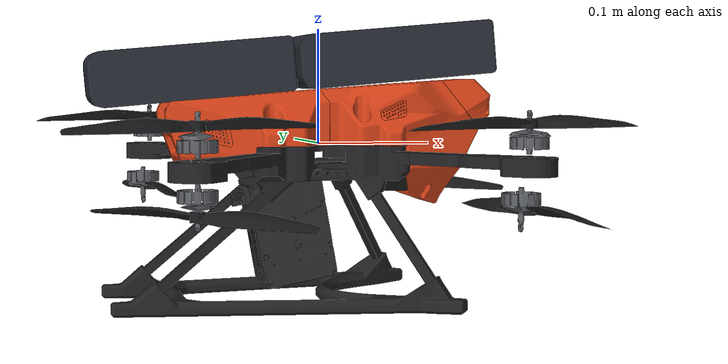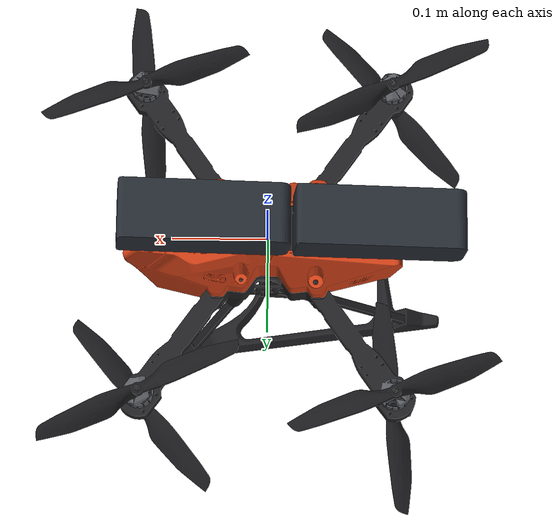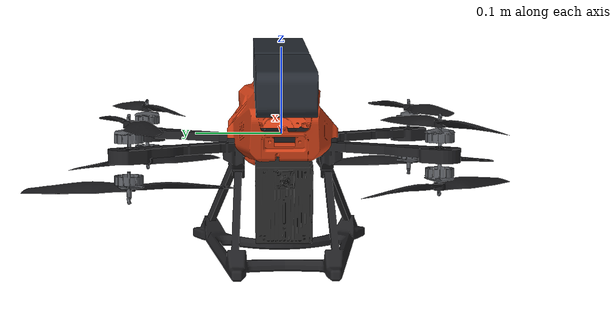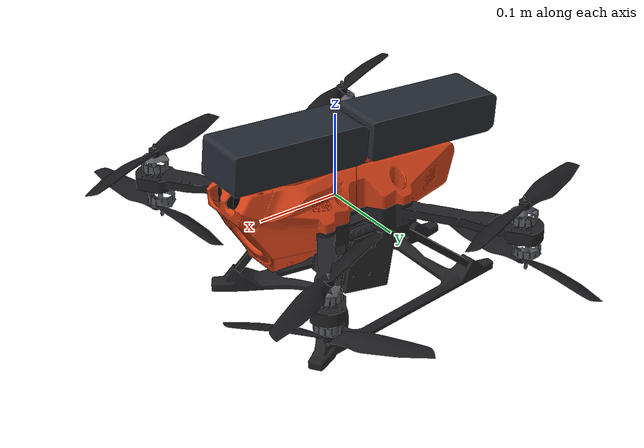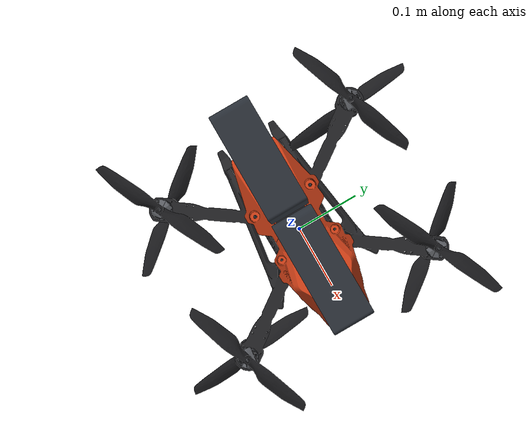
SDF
<?xml version='1.0' encoding='utf-8'?>
<sdf version="1.9">
  <model name="porter">
    <pose>0 0 0 0 0 0</pose>
    <self_collide>false</self_collide>
    <static>false</static>
    <link name="base_link">
      <inertial>
        <pose>-0.0099647757784098907 -0.0002373481406530975 0.023935333252792141 0 0 0</pose>
        <mass>4.6550000000000011</mass>
        <inertia>
          <ixx>0.038163400752508569</ixx>
          <ixy>2.6045715026987511e-05</ixy>
          <ixz>-0.00060536731462408947</ixz>
          <iyy>0.061897142095364233</iyy>
          <iyz>8.8887066983618513e-06</iyz>
          <izz>0.070339338178846522</izz>
        </inertia>
      </inertial>
      <collision name="base_link_collision">
        <pose>0.0046259999999999999 0 0.001748 0 0 0</pose>
        <geometry>
          <box>
            <size>0.28677200000000003 0.125251 0.109526</size>
          </box>
        </geometry>
      </collision>
      <collision name="base_link_collision_1">
        <pose>0.065313999999999997 -0.083019999999999997 -0.01 0 0 -0.90420599999999995</pose>
        <geometry>
          <box>
            <size>0.21126600000000001 0.029999999999999999 0.012</size>
          </box>
        </geometry>
      </collision>
      <collision name="base_link_collision_2">
        <pose>-0.065313999999999997 0.083019999999999997 -0.01 0 0 2.237387</pose>
        <geometry>
          <box>
            <size>0.21126600000000001 0.029999999999999999 0.012</size>
          </box>
        </geometry>
      </collision>
      <collision name="base_link_collision_3">
        <pose>0.065312999999999996 0.083020999999999998 -0.01 0 0 0.90421200000000013</pose>
        <geometry>
          <box>
            <size>0.21126500000000001 0.029999999999999999 0.012</size>
          </box>
        </geometry>
      </collision>
      <collision name="base_link_collision_4">
        <pose>-0.065312999999999996 -0.083020999999999998 -0.01 0 0 -2.2373810000000001</pose>
        <geometry>
          <box>
            <size>0.21126500000000001 0.029999999999999999 0.012</size>
          </box>
        </geometry>
      </collision>
      <collision name="base_link_collision_5">
        <pose>0.13062799999999999 -0.16604099999999999 0.0079190000000000007 0 0 0</pose>
        <geometry>
          <cylinder>
            <length>0.034000000000000002</length>
            <radius>0.017500000000000002</radius>
          </cylinder>
        </geometry>
      </collision>
      <collision name="base_link_collision_6">
        <pose>0.13076199999999999 -0.16598099999999999 -0.032918999999999997 0 0 0</pose>
        <geometry>
          <cylinder>
            <length>0.034000000000000002</length>
            <radius>0.017500000000000002</radius>
          </cylinder>
        </geometry>
      </collision>
      <collision name="base_link_collision_7">
        <pose>-0.13062599999999999 -0.166042 0.0079190000000000007 0 0 0</pose>
        <geometry>
          <cylinder>
            <length>0.034000000000000002</length>
            <radius>0.017500000000000002</radius>
          </cylinder>
        </geometry>
      </collision>
      <collision name="base_link_collision_8">
        <pose>-0.13076199999999999 -0.16598099999999999 -0.032918999999999997 0 0 0</pose>
        <geometry>
          <cylinder>
            <length>0.034000000000000002</length>
            <radius>0.017500000000000002</radius>
          </cylinder>
        </geometry>
      </collision>
      <collision name="base_link_collision_9">
        <pose>-0.13076199999999999 0.16598099999999999 -0.032918999999999997 0 0 0</pose>
        <geometry>
          <cylinder>
            <length>0.034000000000000002</length>
            <radius>0.017500000000000002</radius>
          </cylinder>
        </geometry>
      </collision>
      <collision name="base_link_collision_10">
        <pose>-0.13062799999999999 0.16604099999999999 0.0079190000000000007 0 0 0</pose>
        <geometry>
          <cylinder>
            <length>0.034000000000000002</length>
            <radius>0.017500000000000002</radius>
          </cylinder>
        </geometry>
      </collision>
      <collision name="base_link_collision_11">
        <pose>0.13062599999999999 0.166042 0.0079190000000000007 0 0 0</pose>
        <geometry>
          <cylinder>
            <length>0.034000000000000002</length>
            <radius>0.017500000000000002</radius>
          </cylinder>
        </geometry>
      </collision>
      <collision name="base_link_collision_12">
        <pose>0.13076199999999999 0.16598099999999999 -0.032918999999999997 0 0 0</pose>
        <geometry>
          <cylinder>
            <length>0.034000000000000002</length>
            <radius>0.017500000000000002</radius>
          </cylinder>
        </geometry>
      </collision>
      <collision name="base_link_collision_13">
        <pose>-0.040476999999999999 0.057381000000000001 -0.123428 0 0 0</pose>
        <geometry>
          <box>
            <size>0.29189500000000002 0.100948 0.029144</size>
          </box>
        </geometry>
      </collision>
      <collision name="base_link_collision_14">
        <pose>-0.040476999999999999 -0.057381000000000001 -0.123428 0 0 0</pose>
        <geometry>
          <box>
            <size>0.29189500000000002 0.100948 0.029144</size>
          </box>
        </geometry>
      </collision>
      <collision name="base_link_fixed_joint_lump__battery_front_collision_15">
        <pose>0.06522303670522818 -1.633972797343564e-09 0.078174222859885192 1.5707959999999987 1.4835299999999998 -1.9107600594825517e-15</pose>
        <geometry>
          <box>
            <size>0.047 0.17499999999999999 0.063</size>
          </box>
        </geometry>
      </collision>
      <collision name="base_link_fixed_joint_lump__battery_rear_collision_16">
        <pose>-0.11409196329477179 -1.633972797343564e-09 0.062486222859885199 1.5707959999999987 1.4835299999999998 -1.9107600594825517e-15</pose>
        <geometry>
          <box>
            <size>0.047 0.17499999999999999 0.063</size>
          </box>
        </geometry>
      </collision>
      <visual name="base_link_visual">
        <pose>0 0 0 0 0 0</pose>
        <geometry>
          <mesh>
            <scale>1 1 1</scale>
            <uri>model://porter/meshes/base_frame.stl</uri>
          </mesh>
        </geometry>
        <material>
          <diffuse>0.13 0.13 0.14 1</diffuse>
          <ambient>0.13 0.13 0.14 1</ambient>
        </material>
      </visual>
      <visual name="base_link_visual_1">
        <pose>0 0 0 0 0 0</pose>
        <geometry>
          <mesh>
            <scale>1 1 1</scale>
            <uri>model://porter/meshes/base_shell.stl</uri>
          </mesh>
        </geometry>
        <material>
          <diffuse>0.82 0.25 0.09 1</diffuse>
          <ambient>0.82 0.25 0.09 1</ambient>
        </material>
      </visual>
      <visual name="base_link_visual_2">
        <pose>0.13062699999999999 -0.16604099999999999 0.0014 0 0 1.396263</pose>
        <geometry>
          <mesh>
            <scale>1 1 1</scale>
            <uri>model://porter/meshes/velox2808.stl</uri>
          </mesh>
        </geometry>
        <material>
          <diffuse>0.35 0.36 0.38 1</diffuse>
          <ambient>0.35 0.36 0.38 1</ambient>
        </material>
      </visual>
      <visual name="base_link_visual_3">
        <pose>0.124242 -0.165981 -0.032919 3.14159265359 0 -2.530727</pose>
        <geometry>
          <mesh>
            <scale>1 1 1</scale>
            <uri>model://porter/meshes/velox2808.stl</uri>
          </mesh>
        </geometry>
        <material>
          <diffuse>0.35 0.36 0.38 1</diffuse>
          <ambient>0.35 0.36 0.38 1</ambient>
        </material>
      </visual>
      <visual name="base_link_visual_4">
        <pose>-0.13062599999999999 -0.166042 0.0014 0 0 0.17453299999999999</pose>
        <geometry>
          <mesh>
            <scale>1 1 1</scale>
            <uri>model://porter/meshes/velox2808.stl</uri>
          </mesh>
        </geometry>
        <material>
          <diffuse>0.35 0.36 0.38 1</diffuse>
          <ambient>0.35 0.36 0.38 1</ambient>
        </material>
      </visual>
      <visual name="base_link_visual_5">
        <pose>-0.13076199999999999 -0.16598099999999999 -0.0264 3.1415923071795868 -1.3234889800848443e-23 2.5307270000000002</pose>
        <geometry>
          <mesh>
            <scale>1 1 1</scale>
            <uri>model://porter/meshes/velox2808.stl</uri>
          </mesh>
        </geometry>
        <material>
          <diffuse>0.35 0.36 0.38 1</diffuse>
          <ambient>0.35 0.36 0.38 1</ambient>
        </material>
      </visual>
      <visual name="base_link_visual_6">
        <pose>-0.137281 0.165981 -0.032919 3.14159265359 0 0.610865</pose>
        <geometry>
          <mesh>
            <scale>1 1 1</scale>
            <uri>model://porter/meshes/velox2808.stl</uri>
          </mesh>
        </geometry>
        <material>
          <diffuse>0.35 0.36 0.38 1</diffuse>
          <ambient>0.35 0.36 0.38 1</ambient>
        </material>
      </visual>
      <visual name="base_link_visual_7">
        <pose>-0.13062799999999999 0.16604099999999999 0.0014 0 0 -1.7453289999999999</pose>
        <geometry>
          <mesh>
            <scale>1 1 1</scale>
            <uri>model://porter/meshes/velox2808.stl</uri>
          </mesh>
        </geometry>
        <material>
          <diffuse>0.35 0.36 0.38 1</diffuse>
          <ambient>0.35 0.36 0.38 1</ambient>
        </material>
      </visual>
      <visual name="base_link_visual_8">
        <pose>0.13062599999999999 0.166042 0.0014 0 0 -2.96706</pose>
        <geometry>
          <mesh>
            <scale>1 1 1</scale>
            <uri>model://porter/meshes/velox2808.stl</uri>
          </mesh>
        </geometry>
        <material>
          <diffuse>0.35 0.36 0.38 1</diffuse>
          <ambient>0.35 0.36 0.38 1</ambient>
        </material>
      </visual>
      <visual name="base_link_visual_9">
        <pose>0.13076199999999999 0.16598099999999999 -0.0264 3.1415923071795868 -1.3234889800848443e-23 -0.61086499999999999</pose>
        <geometry>
          <mesh>
            <scale>1 1 1</scale>
            <uri>model://porter/meshes/velox2808.stl</uri>
          </mesh>
        </geometry>
        <material>
          <diffuse>0.35 0.36 0.38 1</diffuse>
          <ambient>0.35 0.36 0.38 1</ambient>
        </material>
      </visual>
      <visual name="base_link_fixed_joint_lump__battery_front_visual_10">
        <pose>0.070204000000000003 0.0315 0.078609999999999999 1.5707959999999987 1.4835299999999998 -1.9107600594825517e-15</pose>
        <geometry>
          <mesh>
            <scale>1 1 1</scale>
            <uri>model://porter/meshes/tattu_6s_8000.stl</uri>
          </mesh>
        </geometry>
        <material>
          <diffuse>0.15 0.17 0.20 1</diffuse>
          <ambient>0.15 0.17 0.20 1</ambient>
        </material>
      </visual>
      <visual name="base_link_fixed_joint_lump__battery_rear_visual_11">
        <pose>-0.109111 0.0315 0.062922000000000006 1.5707959999999987 1.4835299999999998 -1.9107600594825517e-15</pose>
        <geometry>
          <mesh>
            <scale>1 1 1</scale>
            <uri>model://porter/meshes/tattu_6s_8000.stl</uri>
          </mesh>
        </geometry>
        <material>
          <diffuse>0.15 0.17 0.20 1</diffuse>
          <ambient>0.15 0.17 0.20 1</ambient>
        </material>
      </visual>
      <visual name="base_link_fixed_joint_lump__camera_down_visual_12">
        <pose>0.059673998366025507 -0.0161 -0.034330000000000263 0 1.5707963267948966 0</pose>
        <geometry>
          <box>
            <size>0.012 0.029999999999999999 0.029999999999999999</size>
          </box>
        </geometry>
        <material>
          <diffuse>0.05 0.05 0.05 1</diffuse>
          <ambient>0.05 0.05 0.05 1</ambient>
        </material>
      </visual>
      <visual name="base_link_fixed_joint_lump__camera_front_visual_13">
        <pose>0.12775900000000001 -0.0161 0.039009000000000002 0 0 0</pose>
        <geometry>
          <box>
            <size>0.012 0.029999999999999999 0.029999999999999999</size>
          </box>
        </geometry>
        <material>
          <diffuse>0.05 0.05 0.05 1</diffuse>
          <ambient>0.05 0.05 0.05 1</ambient>
        </material>
      </visual>
      <sensor name="camera_down" type="camera">
        <always_on>false</always_on>
        <topic>camera_down/image</topic>
        <update_rate>30</update_rate>
        <camera>
          <horizontal_fov>1.361</horizontal_fov>
          <image>
            <width>1280</width>
            <height>720</height>
          </image>
          <clip>
            <near>0.050000000000000003</near>
            <far>300</far>
          </clip>
        </camera>
        <pose>0.059673999999999998 -0.0161 -0.039329999999999997 3.1415926535897931 1.5707926536359933 3.1415926535897931</pose>
      </sensor>
      <sensor name="camera_front" type="camera">
        <always_on>false</always_on>
        <topic>camera_front/image</topic>
        <update_rate>30</update_rate>
        <camera>
          <horizontal_fov>1.361</horizontal_fov>
          <image>
            <width>1280</width>
            <height>720</height>
          </image>
          <clip>
            <near>0.050000000000000003</near>
            <far>300</far>
          </clip>
        </camera>
        <pose>0.13275899999999999 -0.0161 0.039009000000000002 0 0 0</pose>
      </sensor>
      <sensor name="air_pressure_sensor" type="air_pressure">
        <always_on>1</always_on>
        <update_rate>50</update_rate>
        <air_pressure>
          <pressure>
            <noise type="gaussian">
              <mean>0</mean>
              <stddev>3</stddev>
            </noise>
          </pressure>
        </air_pressure>
      </sensor>
      <sensor name="magnetometer_sensor" type="magnetometer">
        <always_on>1</always_on>
        <update_rate>100</update_rate>
        <magnetometer>
          <x>
            <noise type="gaussian">
              <stddev>0.0001</stddev>
            </noise>
          </x>
          <y>
            <noise type="gaussian">
              <stddev>0.0001</stddev>
            </noise>
          </y>
          <z>
            <noise type="gaussian">
              <stddev>0.0001</stddev>
            </noise>
          </z>
        </magnetometer>
      </sensor>
      <sensor name="imu_sensor" type="imu">
        <always_on>1</always_on>
        <update_rate>250</update_rate>
        <imu>
          <angular_velocity>
            <x>
              <noise type="gaussian">
                <mean>0</mean>
                <stddev>0.0008726646</stddev>
              </noise>
            </x>
            <y>
              <noise type="gaussian">
                <mean>0</mean>
                <stddev>0.0008726646</stddev>
              </noise>
            </y>
            <z>
              <noise type="gaussian">
                <mean>0</mean>
                <stddev>0.0008726646</stddev>
              </noise>
            </z>
          </angular_velocity>
          <linear_acceleration>
            <x>
              <noise type="gaussian">
                <mean>0</mean>
                <stddev>0.00637</stddev>
              </noise>
            </x>
            <y>
              <noise type="gaussian">
                <mean>0</mean>
                <stddev>0.00637</stddev>
              </noise>
            </y>
            <z>
              <noise type="gaussian">
                <mean>0</mean>
                <stddev>0.00686</stddev>
              </noise>
            </z>
          </linear_acceleration>
        </imu>
      </sensor>
      <sensor name="navsat_sensor" type="navsat">
        <always_on>1</always_on>
        <update_rate>30</update_rate>
      </sensor>
    </link>
    <joint name="rotor_0_joint" type="revolute">
      <pose relative_to="base_link">0.13062799999999999 -0.16604099999999999 0.022896 0 0 0</pose>
      <parent>base_link</parent>
      <child>rotor_0</child>
      <axis>
        <xyz>0 0 1</xyz>
        <limit>
          <lower>-inf</lower>
          <upper>inf</upper>
        </limit>
        <dynamics>
          <spring_reference>0</spring_reference>
          <spring_stiffness>0</spring_stiffness>
        </dynamics>
      </axis>
    </joint>
    <link name="rotor_0">
      <pose relative_to="rotor_0_joint">0 0 0 0 0 0</pose>
      <inertial>
        <pose>0 0 0 0 0 0</pose>
        <mass>0.0060000000000000001</mass>
        <inertia>
          <ixx>1.3329999999999999e-05</ixx>
          <ixy>0</ixy>
          <ixz>0</ixz>
          <iyy>1.3329999999999999e-05</iyy>
          <iyz>0</iyz>
          <izz>2.6129999999999999e-05</izz>
        </inertia>
      </inertial>
      <collision name="rotor_0_collision">
        <pose>0 0 0 0 0 0</pose>
        <geometry>
          <cylinder>
            <length>0.012</length>
            <radius>0.1145</radius>
          </cylinder>
        </geometry>
      </collision>
      <visual name="rotor_0_visual">
        <pose>0 0 -0.0098709999999999996 -1.5707959999999999 0 -1.22173</pose>
        <geometry>
          <mesh>
            <scale>1 1 1</scale>
            <uri>model://porter/meshes/t9048_ccw.stl</uri>
          </mesh>
        </geometry>
        <material>
          <diffuse>0.10 0.10 0.11 1</diffuse>
          <ambient>0.10 0.10 0.11 1</ambient>
        </material>
      </visual>
    </link>
    <joint name="rotor_1_joint" type="revolute">
      <pose relative_to="base_link">-0.13062799999999999 0.16604099999999999 0.022896 0 0 0</pose>
      <parent>base_link</parent>
      <child>rotor_1</child>
      <axis>
        <xyz>0 0 1</xyz>
        <limit>
          <lower>-inf</lower>
          <upper>inf</upper>
        </limit>
        <dynamics>
          <spring_reference>0</spring_reference>
          <spring_stiffness>0</spring_stiffness>
        </dynamics>
      </axis>
    </joint>
    <link name="rotor_1">
      <pose relative_to="rotor_1_joint">0 0 0 0 0 0</pose>
      <inertial>
        <pose>0 0 0 0 0 0</pose>
        <mass>0.0060000000000000001</mass>
        <inertia>
          <ixx>1.3329999999999999e-05</ixx>
          <ixy>0</ixy>
          <ixz>0</ixz>
          <iyy>1.3329999999999999e-05</iyy>
          <iyz>0</iyz>
          <izz>2.6129999999999999e-05</izz>
        </inertia>
      </inertial>
      <collision name="rotor_1_collision">
        <pose>0 0 0 0 0 0</pose>
        <geometry>
          <cylinder>
            <length>0.012</length>
            <radius>0.1145</radius>
          </cylinder>
        </geometry>
      </collision>
      <visual name="rotor_1_visual">
        <pose>0 0 -0.0098709999999999996 -1.5707960000000001 -5.5511151231257827e-17 1.919862</pose>
        <geometry>
          <mesh>
            <scale>1 1 1</scale>
            <uri>model://porter/meshes/t9048_ccw.stl</uri>
          </mesh>
        </geometry>
        <material>
          <diffuse>0.10 0.10 0.11 1</diffuse>
          <ambient>0.10 0.10 0.11 1</ambient>
        </material>
      </visual>
    </link>
    <joint name="rotor_2_joint" type="revolute">
      <pose relative_to="base_link">0.13062599999999999 0.166042 0.022896 0 0 0</pose>
      <parent>base_link</parent>
      <child>rotor_2</child>
      <axis>
        <xyz>0 0 1</xyz>
        <limit>
          <lower>-inf</lower>
          <upper>inf</upper>
        </limit>
        <dynamics>
          <spring_reference>0</spring_reference>
          <spring_stiffness>0</spring_stiffness>
        </dynamics>
      </axis>
    </joint>
    <link name="rotor_2">
      <pose relative_to="rotor_2_joint">0 0 0 0 0 0</pose>
      <inertial>
        <pose>0 0 0 0 0 0</pose>
        <mass>0.0060000000000000001</mass>
        <inertia>
          <ixx>1.3329999999999999e-05</ixx>
          <ixy>0</ixy>
          <ixz>0</ixz>
          <iyy>1.3329999999999999e-05</iyy>
          <iyz>0</iyz>
          <izz>2.6129999999999999e-05</izz>
        </inertia>
      </inertial>
      <collision name="rotor_2_collision">
        <pose>0 0 0 0 0 0</pose>
        <geometry>
          <cylinder>
            <length>0.012</length>
            <radius>0.1145</radius>
          </cylinder>
        </geometry>
      </collision>
      <visual name="rotor_2_visual">
        <pose>0 0 -0.0098709999999999996 -1.5707960000000001 0 -1.1344640000000001</pose>
        <geometry>
          <mesh>
            <scale>1 1 1</scale>
            <uri>model://porter/meshes/t9048_cw.stl</uri>
          </mesh>
        </geometry>
        <material>
          <diffuse>0.10 0.10 0.11 1</diffuse>
          <ambient>0.10 0.10 0.11 1</ambient>
        </material>
      </visual>
    </link>
    <joint name="rotor_3_joint" type="revolute">
      <pose relative_to="base_link">-0.13062599999999999 -0.166042 0.022896 0 0 0</pose>
      <parent>base_link</parent>
      <child>rotor_3</child>
      <axis>
        <xyz>0 0 1</xyz>
        <limit>
          <lower>-inf</lower>
          <upper>inf</upper>
        </limit>
        <dynamics>
          <spring_reference>0</spring_reference>
          <spring_stiffness>0</spring_stiffness>
        </dynamics>
      </axis>
    </joint>
    <link name="rotor_3">
      <pose relative_to="rotor_3_joint">0 0 0 0 0 0</pose>
      <inertial>
        <pose>0 0 0 0 0 0</pose>
        <mass>0.0060000000000000001</mass>
        <inertia>
          <ixx>1.3329999999999999e-05</ixx>
          <ixy>0</ixy>
          <ixz>0</ixz>
          <iyy>1.3329999999999999e-05</iyy>
          <iyz>0</iyz>
          <izz>2.6129999999999999e-05</izz>
        </inertia>
      </inertial>
      <collision name="rotor_3_collision">
        <pose>0 0 0 0 0 0</pose>
        <geometry>
          <cylinder>
            <length>0.012</length>
            <radius>0.1145</radius>
          </cylinder>
        </geometry>
      </collision>
      <visual name="rotor_3_visual">
        <pose>0 0 -0.0098709999999999996 -1.5707960000000001 5.5511151231257827e-17 2.0071289999999999</pose>
        <geometry>
          <mesh>
            <scale>1 1 1</scale>
            <uri>model://porter/meshes/t9048_cw.stl</uri>
          </mesh>
        </geometry>
        <material>
          <diffuse>0.10 0.10 0.11 1</diffuse>
          <ambient>0.10 0.10 0.11 1</ambient>
        </material>
      </visual>
    </link>
    <joint name="rotor_4_joint" type="revolute">
      <pose relative_to="base_link">0.13076199999999999 -0.16598099999999999 -0.044778999999999999 0 0 0</pose>
      <parent>base_link</parent>
      <child>rotor_4</child>
      <axis>
        <xyz>0 0 1</xyz>
        <limit>
          <lower>-inf</lower>
          <upper>inf</upper>
        </limit>
        <dynamics>
          <spring_reference>0</spring_reference>
          <spring_stiffness>0</spring_stiffness>
        </dynamics>
      </axis>
    </joint>
    <link name="rotor_4">
      <pose relative_to="rotor_4_joint">0 0 0 0 0 0</pose>
      <inertial>
        <pose>0 0 0 0 0 0</pose>
        <mass>0.0060000000000000001</mass>
        <inertia>
          <ixx>1.3329999999999999e-05</ixx>
          <ixy>0</ixy>
          <ixz>0</ixz>
          <iyy>1.3329999999999999e-05</iyy>
          <iyz>0</iyz>
          <izz>2.6129999999999999e-05</izz>
        </inertia>
      </inertial>
      <collision name="rotor_4_collision">
        <pose>0 0 0 0 0 0</pose>
        <geometry>
          <cylinder>
            <length>0.012</length>
            <radius>0.1145</radius>
          </cylinder>
        </geometry>
      </collision>
      <visual name="rotor_4_visual">
        <pose>0 0 -0.0098709999999999996 -1.5707960000000001 0 -3.0543260000000001</pose>
        <geometry>
          <mesh>
            <scale>1 1 1</scale>
            <uri>model://porter/meshes/t9048_cw.stl</uri>
          </mesh>
        </geometry>
        <material>
          <diffuse>0.10 0.10 0.11 1</diffuse>
          <ambient>0.10 0.10 0.11 1</ambient>
        </material>
      </visual>
    </link>
    <joint name="rotor_5_joint" type="revolute">
      <pose relative_to="base_link">-0.13076199999999999 0.16598099999999999 -0.044778999999999999 0 0 0</pose>
      <parent>base_link</parent>
      <child>rotor_5</child>
      <axis>
        <xyz>0 0 1</xyz>
        <limit>
          <lower>-inf</lower>
          <upper>inf</upper>
        </limit>
        <dynamics>
          <spring_reference>0</spring_reference>
          <spring_stiffness>0</spring_stiffness>
        </dynamics>
      </axis>
    </joint>
    <link name="rotor_5">
      <pose relative_to="rotor_5_joint">0 0 0 0 0 0</pose>
      <inertial>
        <pose>0 0 0 0 0 0</pose>
        <mass>0.0060000000000000001</mass>
        <inertia>
          <ixx>1.3329999999999999e-05</ixx>
          <ixy>0</ixy>
          <ixz>0</ixz>
          <iyy>1.3329999999999999e-05</iyy>
          <iyz>0</iyz>
          <izz>2.6129999999999999e-05</izz>
        </inertia>
      </inertial>
      <collision name="rotor_5_collision">
        <pose>0 0 0 0 0 0</pose>
        <geometry>
          <cylinder>
            <length>0.012</length>
            <radius>0.1145</radius>
          </cylinder>
        </geometry>
      </collision>
      <visual name="rotor_5_visual">
        <pose>0 0 -0.0098709999999999996 -1.5707960000000001 0 0.087265999999999996</pose>
        <geometry>
          <mesh>
            <scale>1 1 1</scale>
            <uri>model://porter/meshes/t9048_cw.stl</uri>
          </mesh>
        </geometry>
        <material>
          <diffuse>0.10 0.10 0.11 1</diffuse>
          <ambient>0.10 0.10 0.11 1</ambient>
        </material>
      </visual>
    </link>
    <joint name="rotor_6_joint" type="revolute">
      <pose relative_to="base_link">0.13076199999999999 0.16598099999999999 -0.044778999999999999 0 0 0</pose>
      <parent>base_link</parent>
      <child>rotor_6</child>
      <axis>
        <xyz>0 0 1</xyz>
        <limit>
          <lower>-inf</lower>
          <upper>inf</upper>
        </limit>
        <dynamics>
          <spring_reference>0</spring_reference>
          <spring_stiffness>0</spring_stiffness>
        </dynamics>
      </axis>
    </joint>
    <link name="rotor_6">
      <pose relative_to="rotor_6_joint">0 0 0 0 0 0</pose>
      <inertial>
        <pose>0 0 0 0 0 0</pose>
        <mass>0.0060000000000000001</mass>
        <inertia>
          <ixx>1.3329999999999999e-05</ixx>
          <ixy>0</ixy>
          <ixz>0</ixz>
          <iyy>1.3329999999999999e-05</iyy>
          <iyz>0</iyz>
          <izz>2.6129999999999999e-05</izz>
        </inertia>
      </inertial>
      <collision name="rotor_6_collision">
        <pose>0 0 0 0 0 0</pose>
        <geometry>
          <cylinder>
            <length>0.012</length>
            <radius>0.1145</radius>
          </cylinder>
        </geometry>
      </collision>
      <visual name="rotor_6_visual">
        <pose>0 0 -0.0098709999999999996 -1.5707960000000001 1.6653345369377348e-16 0.69813199999999975</pose>
        <geometry>
          <mesh>
            <scale>1 1 1</scale>
            <uri>model://porter/meshes/t9048_ccw.stl</uri>
          </mesh>
        </geometry>
        <material>
          <diffuse>0.10 0.10 0.11 1</diffuse>
          <ambient>0.10 0.10 0.11 1</ambient>
        </material>
      </visual>
    </link>
    <joint name="rotor_7_joint" type="revolute">
      <pose relative_to="base_link">-0.13076199999999999 -0.16598099999999999 -0.044778999999999999 0 0 0</pose>
      <parent>base_link</parent>
      <child>rotor_7</child>
      <axis>
        <xyz>0 0 1</xyz>
        <limit>
          <lower>-inf</lower>
          <upper>inf</upper>
        </limit>
        <dynamics>
          <spring_reference>0</spring_reference>
          <spring_stiffness>0</spring_stiffness>
        </dynamics>
      </axis>
    </joint>
    <link name="rotor_7">
      <pose relative_to="rotor_7_joint">0 0 0 0 0 0</pose>
      <inertial>
        <pose>0 0 0 0 0 0</pose>
        <mass>0.0060000000000000001</mass>
        <inertia>
          <ixx>1.3329999999999999e-05</ixx>
          <ixy>0</ixy>
          <ixz>0</ixz>
          <iyy>1.3329999999999999e-05</iyy>
          <iyz>0</iyz>
          <izz>2.6129999999999999e-05</izz>
        </inertia>
      </inertial>
      <collision name="rotor_7_collision">
        <pose>0 0 0 0 0 0</pose>
        <geometry>
          <cylinder>
            <length>0.012</length>
            <radius>0.1145</radius>
          </cylinder>
        </geometry>
      </collision>
      <visual name="rotor_7_visual">
        <pose>0 0 -0.0098709999999999996 -1.5707960000000001 -5.5511151231257827e-17 -2.4434610000000001</pose>
        <geometry>
          <mesh>
            <scale>1 1 1</scale>
            <uri>model://porter/meshes/t9048_ccw.stl</uri>
          </mesh>
        </geometry>
        <material>
          <diffuse>0.10 0.10 0.11 1</diffuse>
          <ambient>0.10 0.10 0.11 1</ambient>
        </material>
      </visual>
    </link>
    <plugin name="gz::sim::systems::MulticopterMotorModel" filename="gz-sim-multicopter-motor-model-system">
      <jointName>rotor_0_joint</jointName>
      <linkName>rotor_0</linkName>
      <turningDirection>ccw</turningDirection>
      <timeConstantUp>0.0125</timeConstantUp>
      <timeConstantDown>0.025</timeConstantDown>
      <maxRotVelocity>1600</maxRotVelocity>
      <motorConstant>7.8e-06</motorConstant>
      <momentConstant>0.016</momentConstant>
      <commandSubTopic>command/motor_speed</commandSubTopic>
      <motorNumber>0</motorNumber>
      <rotorDragCoefficient>8.06e-05</rotorDragCoefficient>
      <rollingMomentCoefficient>1e-06</rollingMomentCoefficient>
      <rotorVelocitySlowdownSim>10</rotorVelocitySlowdownSim>
      <motorType>velocity</motorType>
    </plugin>
    <plugin name="gz::sim::systems::MulticopterMotorModel" filename="gz-sim-multicopter-motor-model-system">
      <jointName>rotor_1_joint</jointName>
      <linkName>rotor_1</linkName>
      <turningDirection>ccw</turningDirection>
      <timeConstantUp>0.0125</timeConstantUp>
      <timeConstantDown>0.025</timeConstantDown>
      <maxRotVelocity>1600</maxRotVelocity>
      <motorConstant>7.8e-06</motorConstant>
      <momentConstant>0.016</momentConstant>
      <commandSubTopic>command/motor_speed</commandSubTopic>
      <motorNumber>1</motorNumber>
      <rotorDragCoefficient>8.06e-05</rotorDragCoefficient>
      <rollingMomentCoefficient>1e-06</rollingMomentCoefficient>
      <rotorVelocitySlowdownSim>10</rotorVelocitySlowdownSim>
      <motorType>velocity</motorType>
    </plugin>
    <plugin name="gz::sim::systems::MulticopterMotorModel" filename="gz-sim-multicopter-motor-model-system">
      <jointName>rotor_2_joint</jointName>
      <linkName>rotor_2</linkName>
      <turningDirection>cw</turningDirection>
      <timeConstantUp>0.0125</timeConstantUp>
      <timeConstantDown>0.025</timeConstantDown>
      <maxRotVelocity>1600</maxRotVelocity>
      <motorConstant>7.8e-06</motorConstant>
      <momentConstant>0.016</momentConstant>
      <commandSubTopic>command/motor_speed</commandSubTopic>
      <motorNumber>2</motorNumber>
      <rotorDragCoefficient>8.06e-05</rotorDragCoefficient>
      <rollingMomentCoefficient>1e-06</rollingMomentCoefficient>
      <rotorVelocitySlowdownSim>10</rotorVelocitySlowdownSim>
      <motorType>velocity</motorType>
    </plugin>
    <plugin name="gz::sim::systems::MulticopterMotorModel" filename="gz-sim-multicopter-motor-model-system">
      <jointName>rotor_3_joint</jointName>
      <linkName>rotor_3</linkName>
      <turningDirection>cw</turningDirection>
      <timeConstantUp>0.0125</timeConstantUp>
      <timeConstantDown>0.025</timeConstantDown>
      <maxRotVelocity>1600</maxRotVelocity>
      <motorConstant>7.8e-06</motorConstant>
      <momentConstant>0.016</momentConstant>
      <commandSubTopic>command/motor_speed</commandSubTopic>
      <motorNumber>3</motorNumber>
      <rotorDragCoefficient>8.06e-05</rotorDragCoefficient>
      <rollingMomentCoefficient>1e-06</rollingMomentCoefficient>
      <rotorVelocitySlowdownSim>10</rotorVelocitySlowdownSim>
      <motorType>velocity</motorType>
    </plugin>
    <plugin name="gz::sim::systems::MulticopterMotorModel" filename="gz-sim-multicopter-motor-model-system">
      <jointName>rotor_4_joint</jointName>
      <linkName>rotor_4</linkName>
      <turningDirection>cw</turningDirection>
      <timeConstantUp>0.0125</timeConstantUp>
      <timeConstantDown>0.025</timeConstantDown>
      <maxRotVelocity>1600</maxRotVelocity>
      <motorConstant>7.8e-06</motorConstant>
      <momentConstant>0.016</momentConstant>
      <commandSubTopic>command/motor_speed</commandSubTopic>
      <motorNumber>4</motorNumber>
      <rotorDragCoefficient>8.06e-05</rotorDragCoefficient>
      <rollingMomentCoefficient>1e-06</rollingMomentCoefficient>
      <rotorVelocitySlowdownSim>10</rotorVelocitySlowdownSim>
      <motorType>velocity</motorType>
    </plugin>
    <plugin name="gz::sim::systems::MulticopterMotorModel" filename="gz-sim-multicopter-motor-model-system">
      <jointName>rotor_5_joint</jointName>
      <linkName>rotor_5</linkName>
      <turningDirection>cw</turningDirection>
      <timeConstantUp>0.0125</timeConstantUp>
      <timeConstantDown>0.025</timeConstantDown>
      <maxRotVelocity>1600</maxRotVelocity>
      <motorConstant>7.8e-06</motorConstant>
      <momentConstant>0.016</momentConstant>
      <commandSubTopic>command/motor_speed</commandSubTopic>
      <motorNumber>5</motorNumber>
      <rotorDragCoefficient>8.06e-05</rotorDragCoefficient>
      <rollingMomentCoefficient>1e-06</rollingMomentCoefficient>
      <rotorVelocitySlowdownSim>10</rotorVelocitySlowdownSim>
      <motorType>velocity</motorType>
    </plugin>
    <plugin name="gz::sim::systems::MulticopterMotorModel" filename="gz-sim-multicopter-motor-model-system">
      <jointName>rotor_6_joint</jointName>
      <linkName>rotor_6</linkName>
      <turningDirection>ccw</turningDirection>
      <timeConstantUp>0.0125</timeConstantUp>
      <timeConstantDown>0.025</timeConstantDown>
      <maxRotVelocity>1600</maxRotVelocity>
      <motorConstant>7.8e-06</motorConstant>
      <momentConstant>0.016</momentConstant>
      <commandSubTopic>command/motor_speed</commandSubTopic>
      <motorNumber>6</motorNumber>
      <rotorDragCoefficient>8.06e-05</rotorDragCoefficient>
      <rollingMomentCoefficient>1e-06</rollingMomentCoefficient>
      <rotorVelocitySlowdownSim>10</rotorVelocitySlowdownSim>
      <motorType>velocity</motorType>
    </plugin>
    <plugin name="gz::sim::systems::MulticopterMotorModel" filename="gz-sim-multicopter-motor-model-system">
      <jointName>rotor_7_joint</jointName>
      <linkName>rotor_7</linkName>
      <turningDirection>ccw</turningDirection>
      <timeConstantUp>0.0125</timeConstantUp>
      <timeConstantDown>0.025</timeConstantDown>
      <maxRotVelocity>1600</maxRotVelocity>
      <motorConstant>7.8e-06</motorConstant>
      <momentConstant>0.016</momentConstant>
      <commandSubTopic>command/motor_speed</commandSubTopic>
      <motorNumber>7</motorNumber>
      <rotorDragCoefficient>8.06e-05</rotorDragCoefficient>
      <rollingMomentCoefficient>1e-06</rollingMomentCoefficient>
      <rotorVelocitySlowdownSim>10</rotorVelocitySlowdownSim>
      <motorType>velocity</motorType>
    </plugin>
    <frame name="battery_front_joint" attached_to="base_link">
      <pose>0.070204000000000003 0.0315 0.078609999999999999 1.5707960000000001 1.4835299999999998 -6.3692001982751724e-16</pose>
    </frame>
    <frame name="battery_front" attached_to="battery_front_joint">
      <pose>0 0 0 0 0 0</pose>
    </frame>
    <frame name="battery_rear_joint" attached_to="base_link">
      <pose>-0.109111 0.0315 0.062922000000000006 1.5707960000000001 1.4835299999999998 -6.3692001982751724e-16</pose>
    </frame>
    <frame name="battery_rear" attached_to="battery_rear_joint">
      <pose>0 0 0 0 0 0</pose>
    </frame>
    <frame name="camera_down_optical_joint" attached_to="camera_down">
      <pose>0 0 0 -1.5707959999999999 0 -1.5707959999999999</pose>
    </frame>
    <frame name="camera_down_optical" attached_to="camera_down_optical_joint">
      <pose>0 0 0 0 0 0</pose>
    </frame>
    <frame name="camera_down_joint" attached_to="base_link">
      <pose>0.059673999999999998 -0.0161 -0.039329999999999997 0 1.5707959999869179 0</pose>
    </frame>
    <frame name="camera_down" attached_to="camera_down_joint">
      <pose>0 0 0 0 0 0</pose>
    </frame>
    <frame name="camera_front_optical_joint" attached_to="camera_front">
      <pose>0 0 0 -1.5707959999999999 0 -1.5707959999999999</pose>
    </frame>
    <frame name="camera_front_optical" attached_to="camera_front_optical_joint">
      <pose>0 0 0 0 0 0</pose>
    </frame>
    <frame name="camera_front_joint" attached_to="base_link">
      <pose>0.13275899999999999 -0.0161 0.039009000000000002 0 0 0</pose>
    </frame>
    <frame name="camera_front" attached_to="camera_front_joint">
      <pose>0 0 0 0 0 0</pose>
    </frame>
    <frame name="imu_joint" attached_to="base_link">
      <pose>0 0 0 0 0 0</pose>
    </frame>
    <frame name="imu_link" attached_to="imu_joint">
      <pose>0 0 0 0 0 0</pose>
    </frame>
    <include merge="true">
      <uri>model://livox_avia</uri>
      <pose relative_to="base_link">-0.021893 -0.003378 -0.112559 0 1.395838 0.012887</pose>
    </include>
    <joint name="livox_avia_mount_joint" type="fixed">
      <parent>base_link</parent>
      <child>livox_avia_link</child>
    </joint>
  </model>
</sdf>

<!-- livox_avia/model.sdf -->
<sdf version="1.9">
  <model name="livox_avia">
    <self_collide>false</self_collide>
    <static>false</static>

    <link name="livox_avia_link">
      <gravity>true</gravity>
      <inertial>
        <pose>-0.041135035 0.000000276 -0.000000340 0.072773679 -1.395368869 -0.073903923</pose>
        <mass>0.498</mass>
        <inertia>
          <ixx>0.000486</ixx><iyy>0.000690</iyy><izz>0.000503</izz>
          <ixy>0</ixy><ixz>0</ixz><iyz>0</iyz>
        </inertia>
      </inertial>
      <collision name="housing_collision">
        <pose>-0.041135035 0.000000276 -0.000000340 0.072773679 -1.395368869 -0.073903923</pose>
        <geometry><box><size>0.0883 0.0649 0.0998</size></box></geometry>
      </collision>
      <visual name="housing_visual">
        <pose>-0.041135035 0.000000276 -0.000000340 0.072773679 -1.395368869 -0.073903923</pose>
        <cast_shadows>true</cast_shadows>
        <geometry><mesh><uri>model://livox_avia/meshes/livox_avia.stl</uri></mesh></geometry>
        <material>
          <ambient>0.10 0.10 0.10 1</ambient>
          <diffuse>0.16 0.16 0.16 1</diffuse>
          <specular>0.25 0.25 0.25 1</specular>
        </material>
      </visual>

      <sensor name="nonrepetitive" type="gpu_lidar">
        <topic>/livox_avia/nonrepetitive/scan</topic>
        <always_on>false</always_on>
        <update_rate>10</update_rate>
        <visualize>true</visualize>
        <ray>
          <scan>
            <horizontal>
              <samples>352</samples><resolution>1</resolution>
              <min_angle>-0.614355897</min_angle><max_angle>0.614355897</max_angle>
            </horizontal>
            <vertical>
              <samples>386</samples><resolution>1</resolution>
              <min_angle>-0.673697091</min_angle><max_angle>0.673697091</max_angle>
            </vertical>
          </scan>
          <!-- 190 m is the guaranteed daylight range at 10% reflectivity.
               Livox specifies a blind zone below 1 m and <2 cm (1 sigma)
               random range error at 20 m. -->
          <range><min>1.0</min><max>190.0</max><resolution>0.002</resolution></range>
          <noise><type>gaussian</type><mean>0</mean><stddev>0.02</stddev></noise>
        </ray>
      </sensor>

      <!-- Repetitive line mode: 70.4 x 4.5 degrees, 24k samples per 10 Hz
           cloud = the real strongest/single-return rate of 240k points/s. -->
      <sensor name="repetitive" type="gpu_lidar">
        <topic>/livox_avia/repetitive/scan</topic>
        <always_on>false</always_on>
        <update_rate>10</update_rate>
        <visualize>true</visualize>
        <ray>
          <scan>
            <horizontal>
              <samples>600</samples><resolution>1</resolution>
              <min_angle>-0.614355897</min_angle><max_angle>0.614355897</max_angle>
            </horizontal>
            <vertical>
              <samples>40</samples><resolution>1</resolution>
              <min_angle>-0.039269908</min_angle><max_angle>0.039269908</max_angle>
            </vertical>
          </scan>
          <range><min>1.0</min><max>190.0</max><resolution>0.002</resolution></range>
          <noise><type>gaussian</type><mean>0</mean><stddev>0.02</stddev></noise>
        </ray>
      </sensor>

      <!-- BMI088 IMU. Its origin is 41.65 mm behind, 23.26 mm right and
           28.40 mm above the point-cloud origin per the Avia manual. -->
      <sensor name="imu" type="imu">
        <pose>-0.04165 -0.02326 0.02840 0 0 0</pose>
        <topic>/livox_avia/imu</topic>
        <always_on>false</always_on>
        <update_rate>200</update_rate>
      </sensor>
    </link>
  </model>
</sdf>
